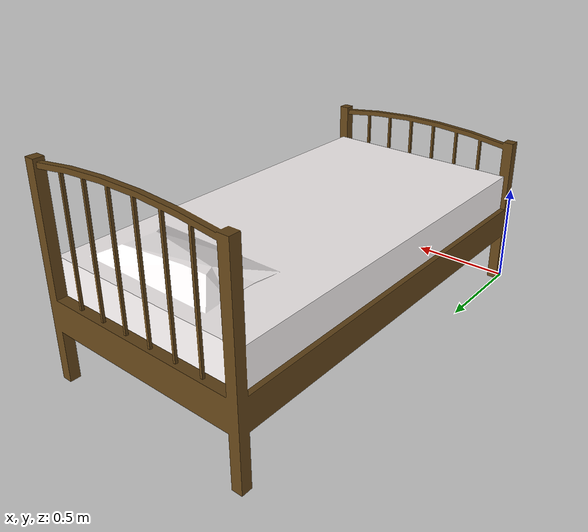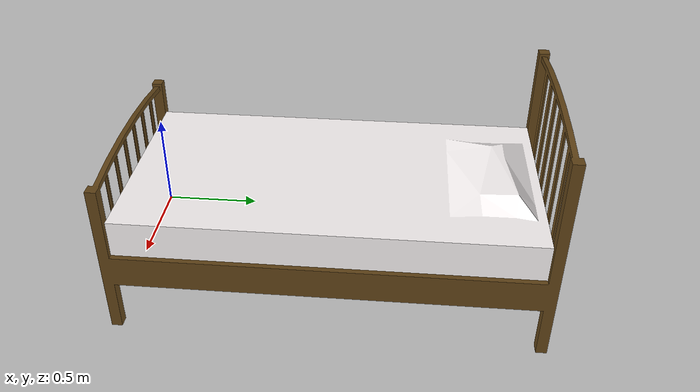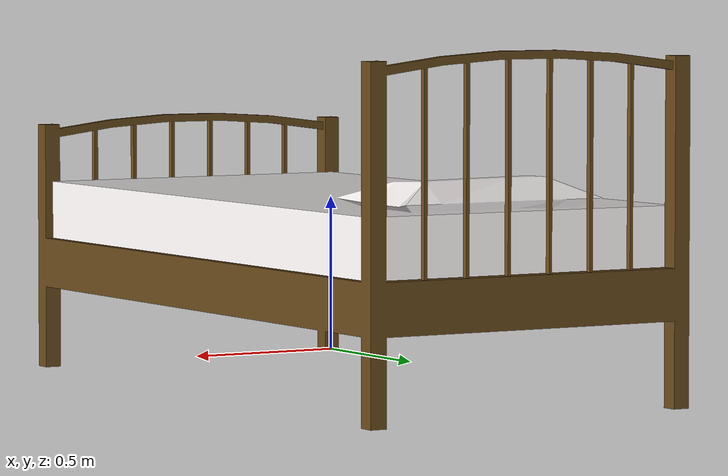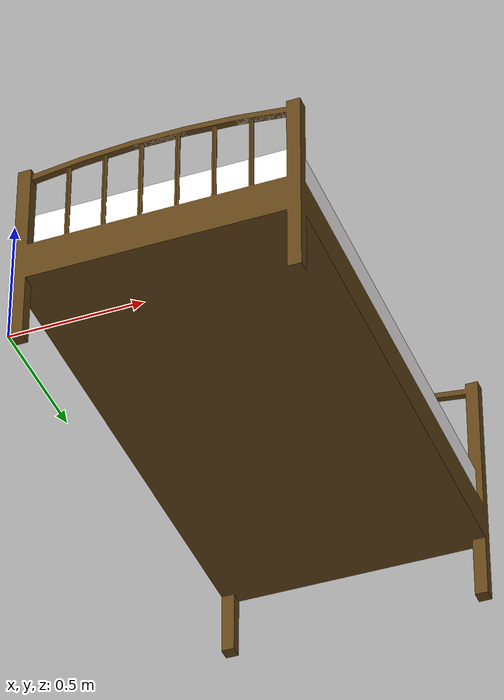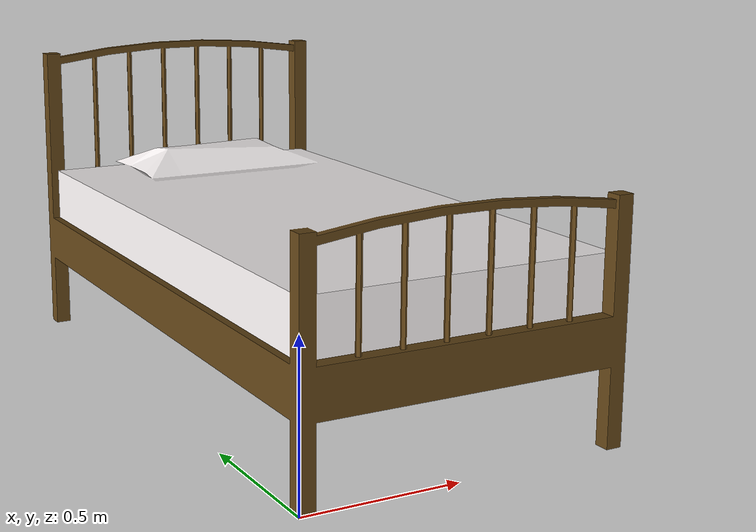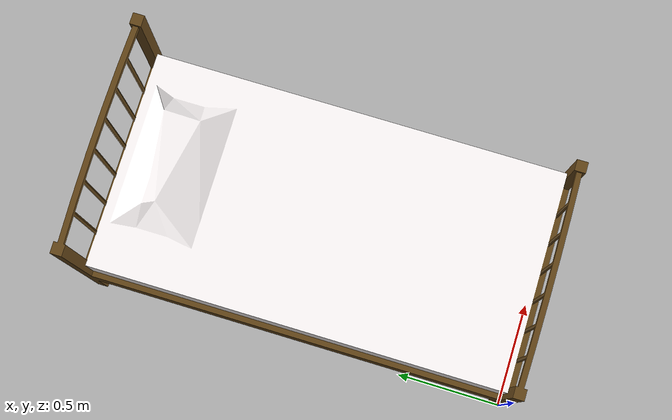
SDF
<?xml version="1.0" ?>
<sdf version="1.5">
  <model name="bed">
    <link name="link">
      <pose>0 0 0 0 0 0</pose>
      <gravity>false</gravity>
      <inertial>
	<mass>10</mass>
      </inertial>
      <visual name="visual">
	<geometry>
	  <mesh>
	    <uri>model://bed/meshes/bed.dae</uri>
            <scale>1 1 1</scale>
	  </mesh>
	</geometry>
      </visual>
      <collision name="bed">
	<geometry>
	  <mesh>
	    <uri>model://bed/meshes/bed.dae</uri>
            <scale>1 1 1</scale>
	  </mesh>
	</geometry>
      </collision>
    </link>
    <static>1</static>
  </model>
</sdf>
